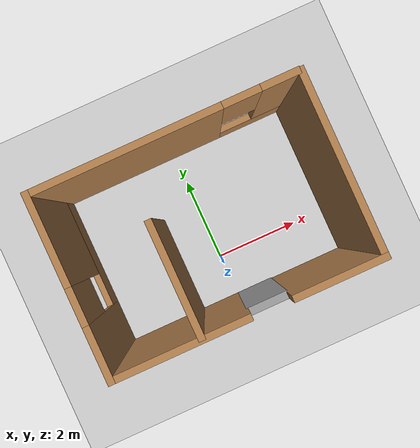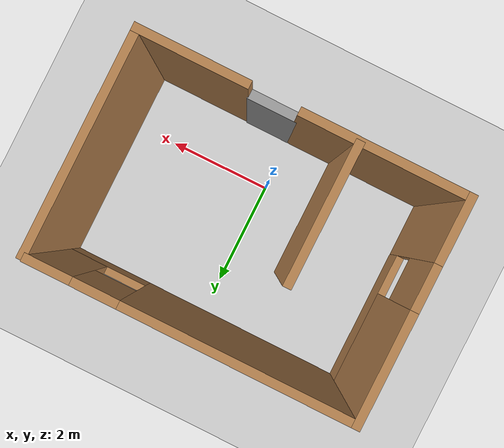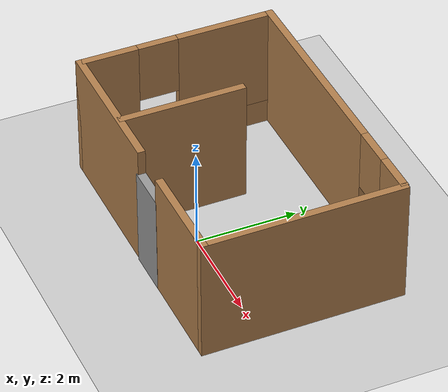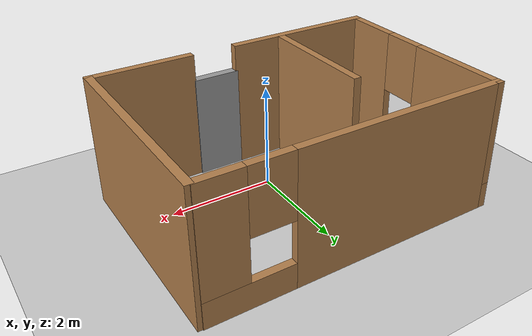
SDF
<sdf version="1.7">
 <world name="default">
  <light name="sun" type="directional">
   <pose>0 0 10 0 -0 0</pose>
   <diffuse>0.8 0.8 0.8 1</diffuse>
   <specular>0.2 0.2 0.2 1</specular>
   <attenuation>
    <range>1000</range>
    <constant>0.9</constant>
    <linear>0.01</linear>
    <quadratic>0.001</quadratic>
   </attenuation>
   <direction>-0.5 0.1 -0.9</direction>
   <spot><inner_angle>0</inner_angle><outer_angle>0</outer_angle><falloff>0</falloff></spot>
  </light>
  <model name="ground_plane">
   <static>1</static>
   <link name="link">
    <collision name="collision">
     <geometry><plane><normal>0 0 1</normal><size>100 100</size></plane></geometry>
     <surface>
      <contact><collide_bitmask>65535</collide_bitmask></contact>
      <friction><ode><mu>100</mu><mu2>50</mu2></ode></friction>
     </surface>
    </collision>
    <visual name="visual">
     <cast_shadows>0</cast_shadows>
     <geometry><plane><normal>0 0 1</normal><size>100 100</size></plane></geometry>
     <material>
      <script><uri>file://media/materials/scripts/gazebo.material</uri><name>Gazebo/Grey</name></script>
     </material>
    </visual>
   </link>
  </model>
  <gravity>0 0 -9.8</gravity>
  <magnetic_field>6e-06 2.3e-05 -4.2e-05</magnetic_field>
  <atmosphere type="adiabatic"/>
  <physics type="ode">
   <max_step_size>0.001</max_step_size>
   <real_time_factor>1</real_time_factor>
   <real_time_update_rate>1000</real_time_update_rate>
  </physics>
  <scene><ambient>0.4 0.4 0.4 1</ambient><background>0.7 0.7 0.7 1</background><shadows>1</shadows></scene>
  <spherical_coordinates>
   <surface_model>EARTH_WGS84</surface_model>
   <latitude_deg>0</latitude_deg>
   <longitude_deg>0</longitude_deg>
   <elevation>0</elevation>
   <heading_deg>0</heading_deg>
  </spherical_coordinates>
  <model name="house">
   <pose>-0.019368 0.835868 0 0 -0 0</pose>
   <link name="Door_1">
    <collision name="Door_1_Collision">
     <geometry><box><size>0.9 0.17 2</size></box></geometry>
     <pose>0 0 1 0 -0 0</pose>
    </collision>
    <visual name="Door_1_Visual">
     <pose>0 0 1 0 -0 0</pose>
     <geometry><box><size>0.9 0.17 2</size></box></geometry>
     <material>
      <script><uri>file://media/materials/scripts/gazebo.material</uri><name>Gazebo/Grey</name></script>
     </material>
    </visual>
    <pose>0.48908 -1.926 0 0 -0 0</pose>
   </link>
   <link name="Wall_14">
    <pose>-2.84154 0.008584 0 0 -0 1.5708</pose>
    <visual name="Wall_14_Visual_0">
     <pose>-1.39621 0 1.25 0 -0 0</pose>
     <geometry><box><size>1.20758 0.15 2.5</size></box></geometry>
     <material>
      <script><uri>file://media/materials/scripts/gazebo.material</uri><name>Gazebo/Wood</name></script>
      <ambient>1 1 1 1</ambient>
     </material>
     <meta><layer>0</layer></meta>
    </visual>
    <collision name="Wall_14_Collision_0">
     <geometry><box><size>1.20758 0.15 2.5</size></box></geometry>
     <pose>-1.39621 0 1.25 0 -0 0</pose>
    </collision>
    <visual name="Wall_14_Visual_1">
     <pose>0.603791 0 0.25 0 -0 0</pose>
     <geometry><box><size>2.79242 0.15 0.5</size></box></geometry>
     <material>
      <script><uri>file://media/materials/scripts/gazebo.material</uri><name>Gazebo/Wood</name></script>
      <ambient>1 1 1 1</ambient>
     </material>
     <meta><layer>0</layer></meta>
    </visual>
    <collision name="Wall_14_Collision_1">
     <geometry><box><size>2.79242 0.15 0.5</size></box></geometry>
     <pose>0.603791 0 0.25 0 -0 0</pose>
    </collision>
    <visual name="Wall_14_Visual_2">
     <pose>1.00379 0 1.5 0 -0 0</pose>
     <geometry><box><size>1.99242 0.15 2</size></box></geometry>
     <material>
      <script><uri>file://media/materials/scripts/gazebo.material</uri><name>Gazebo/Wood</name></script>
      <ambient>1 1 1 1</ambient>
     </material>
     <meta><layer>0</layer></meta>
    </visual>
    <collision name="Wall_14_Collision_2">
     <geometry><box><size>1.99242 0.15 2</size></box></geometry>
     <pose>1.00379 0 1.5 0 -0 0</pose>
    </collision>
    <visual name="Wall_14_Visual_3">
     <pose>-0.392417 0 1.9 0 -0 0</pose>
     <geometry><box><size>0.8 0.15 1.2</size></box></geometry>
     <material>
      <script><uri>file://media/materials/scripts/gazebo.material</uri><name>Gazebo/Wood</name></script>
      <ambient>1 1 1 1</ambient>
     </material>
     <meta><layer>0</layer></meta>
    </visual>
    <collision name="Wall_14_Collision_3">
     <geometry><box><size>0.8 0.15 1.2</size></box></geometry>
     <pose>-0.392417 0 1.9 0 -0 0</pose>
    </collision>
   </link>
   <link name="Wall_15">
    <pose>-0.041539 1.93358 0 0 -0 0</pose>
    <visual name="Wall_15_Visual_0">
     <pose>-0.808698 0 1.25 0 -0 0</pose>
     <geometry><box><size>4.1326 0.15 2.5</size></box></geometry>
     <material>
      <script><uri>file://media/materials/scripts/gazebo.material</uri><name>Gazebo/Wood</name></script>
      <ambient>1 1 1 1</ambient>
     </material>
     <meta><layer>0</layer></meta>
    </visual>
    <collision name="Wall_15_Collision_0">
     <geometry><box><size>4.1326 0.15 2.5</size></box></geometry>
     <pose>-0.808698 0 1.25 0 -0 0</pose>
    </collision>
    <visual name="Wall_15_Visual_1">
     <pose>2.0663 0 0.25 0 -0 0</pose>
     <geometry><box><size>1.61739 0.15 0.5</size></box></geometry>
     <material>
      <script><uri>file://media/materials/scripts/gazebo.material</uri><name>Gazebo/Wood</name></script>
      <ambient>1 1 1 1</ambient>
     </material>
     <meta><layer>0</layer></meta>
    </visual>
    <collision name="Wall_15_Collision_1">
     <geometry><box><size>1.61739 0.15 0.5</size></box></geometry>
     <pose>2.0663 0 0.25 0 -0 0</pose>
    </collision>
    <visual name="Wall_15_Visual_2">
     <pose>2.4663 0 1.5 0 -0 0</pose>
     <geometry><box><size>0.817395 0.15 2</size></box></geometry>
     <material>
      <script><uri>file://media/materials/scripts/gazebo.material</uri><name>Gazebo/Wood</name></script>
      <ambient>1 1 1 1</ambient>
     </material>
     <meta><layer>0</layer></meta>
    </visual>
    <collision name="Wall_15_Collision_2">
     <geometry><box><size>0.817395 0.15 2</size></box></geometry>
     <pose>2.4663 0 1.5 0 -0 0</pose>
    </collision>
    <visual name="Wall_15_Visual_3">
     <pose>1.6576 0 1.9 0 -0 0</pose>
     <geometry><box><size>0.8 0.15 1.2</size></box></geometry>
     <material>
      <script><uri>file://media/materials/scripts/gazebo.material</uri><name>Gazebo/Wood</name></script>
      <ambient>1 1 1 1</ambient>
     </material>
     <meta><layer>0</layer></meta>
    </visual>
    <collision name="Wall_15_Collision_3">
     <geometry><box><size>0.8 0.15 1.2</size></box></geometry>
     <pose>1.6576 0 1.9 0 -0 0</pose>
    </collision>
   </link>
   <link name="Wall_18">
    <collision name="Wall_18_Collision">
     <geometry><box><size>2.5 0.15 2.5</size></box></geometry>
     <pose>0 0 1.25 0 -0 0</pose>
    </collision>
    <visual name="Wall_18_Visual">
     <pose>0 0 1.25 0 -0 0</pose>
     <geometry><box><size>2.5 0.15 2.5</size></box></geometry>
     <material>
      <script><uri>file://media/materials/scripts/gazebo.material</uri><name>Gazebo/Wood</name></script>
      <ambient>1 1 1 1</ambient>
     </material>
     <meta><layer>0</layer></meta>
    </visual>
    <pose>-0.951432 -0.689192 0 0 -0 1.5708</pose>
   </link>
   <link name="Wall_4">
    <collision name="Wall_4_Collision">
     <geometry><box><size>3 0.15 2.5</size></box></geometry>
     <pose>0 0 1.25 0 -0 0</pose>
    </collision>
    <visual name="Wall_4_Visual">
     <pose>0 0 1.25 0 -0 0</pose>
     <geometry><box><size>3 0.15 2.5</size></box></geometry>
     <material>
      <script><uri>file://media/materials/scripts/gazebo.material</uri><name>Gazebo/Wood</name></script>
      <ambient>1 1 1 1</ambient>
     </material>
     <meta><layer>0</layer></meta>
    </visual>
    <pose>-1.41654 -1.91642 0 0 -0 3.14159</pose>
   </link>
   <link name="Wall_7">
    <collision name="Wall_7_Collision">
     <geometry><box><size>2 0.15 2.5</size></box></geometry>
     <pose>0 0 1.25 0 -0 0</pose>
    </collision>
    <visual name="Wall_7_Visual">
     <pose>0 0 1.25 0 -0 0</pose>
     <geometry><box><size>2 0.15 2.5</size></box></geometry>
     <material>
      <script><uri>file://media/materials/scripts/gazebo.material</uri><name>Gazebo/Wood</name></script>
      <ambient>1 1 1 1</ambient>
     </material>
     <meta><layer>0</layer></meta>
    </visual>
    <pose>1.91654 -1.93358 0 0 -0 0</pose>
   </link>
   <link name="Wall_8">
    <collision name="Wall_8_Collision">
     <geometry><box><size>4 0.15 2.5</size></box></geometry>
     <pose>0 0 1.25 0 -0 0</pose>
    </collision>
    <visual name="Wall_8_Visual">
     <pose>0 0 1.25 0 -0 0</pose>
     <geometry><box><size>4 0.15 2.5</size></box></geometry>
     <material>
      <script><uri>file://media/materials/scripts/gazebo.material</uri><name>Gazebo/Wood</name></script>
      <ambient>1 1 1 1</ambient>
     </material>
     <meta><layer>0</layer></meta>
    </visual>
    <pose>2.84154 -0.008584 0 0 -0 1.5708</pose>
   </link>
   <static>1</static>
  </model>
 </world>
</sdf>
